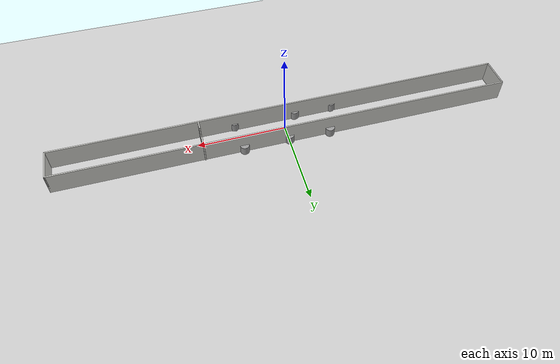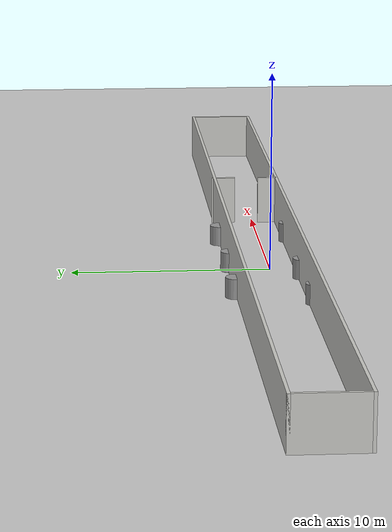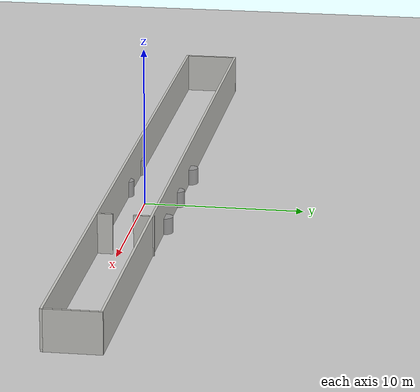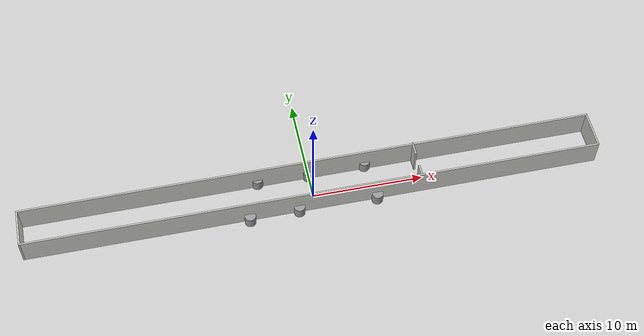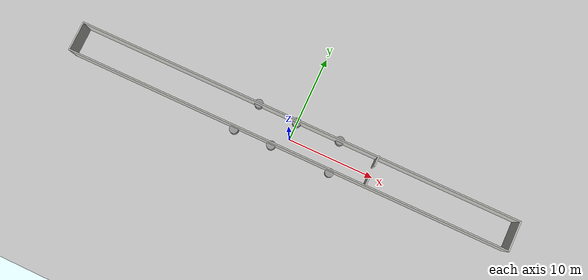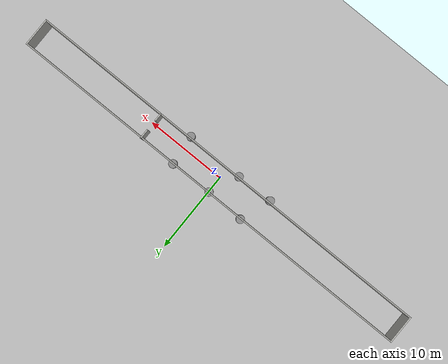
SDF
<sdf version="1.7">
 <world name="default">
  <light name="sun" type="directional">
   <pose>0 0 10 0 -0 0</pose>
   <diffuse>0.8 0.8 0.8 1</diffuse>
   <specular>0.2 0.2 0.2 1</specular>
   <attenuation>
    <range>1000</range>
    <constant>0.9</constant>
    <linear>0.01</linear>
    <quadratic>0.001</quadratic>
   </attenuation>
   <direction>-0.5 0.1 -0.9</direction>
   <spot><inner_angle>0</inner_angle><outer_angle>0</outer_angle><falloff>0</falloff></spot>
  </light>
  <model name="ground_plane">
   <static>1</static>
   <link name="link">
    <collision name="collision">
     <geometry><plane><normal>0 0 1</normal><size>100 100</size></plane></geometry>
     <surface><friction><ode><mu>100</mu><mu2>50</mu2></ode></friction></surface>
    </collision>
    <visual name="visual">
     <cast_shadows>0</cast_shadows>
     <geometry><plane><normal>0 0 1</normal><size>100 100</size></plane></geometry>
     <material>
      <script><uri>file://media/materials/scripts/gazebo.material</uri><name>Gazebo/Grey</name></script>
     </material>
    </visual>
   </link>
  </model>
  <gravity>0 0 -9.8</gravity>
  <magnetic_field>6e-06 2.3e-05 -4.2e-05</magnetic_field>
  <atmosphere type="adiabatic"/>
  <physics type="ode">
   <max_step_size>0.001</max_step_size>
   <real_time_factor>1</real_time_factor>
   <real_time_update_rate>1000</real_time_update_rate>
  </physics>
  <scene><ambient>0.4 0.4 0.4 1</ambient><background>0.7 0.7 0.7 1</background><shadows>1</shadows></scene>
  <audio><device>default</device></audio>
  <spherical_coordinates>
   <surface_model>EARTH_WGS84</surface_model>
   <latitude_deg>0</latitude_deg>
   <longitude_deg>0</longitude_deg>
   <elevation>0</elevation>
   <heading_deg>0</heading_deg>
  </spherical_coordinates>
  <model name="telematica">
   <pose>-0.003915 0.41687 0 0 -0 0</pose>
   <link name="Wall_12">
    <collision name="Wall_12_Collision">
     <geometry><box><size>51.75 0.15 2.5</size></box></geometry>
     <pose>0 0 1.25 0 -0 0</pose>
    </collision>
    <visual name="Wall_12_Visual">
     <pose>0 0 1.25 0 -0 0</pose>
     <geometry><box><size>51.75 0.15 2.5</size></box></geometry>
     <material>
      <script><uri>file://media/materials/scripts/gazebo.material</uri><name>Gazebo/CeilingTiled</name></script>
      <ambient>1 1 1 1</ambient>
     </material>
     <meta><layer>0</layer></meta>
    </visual>
    <pose>-0 1.6351 0 0 -0 0</pose>
   </link>
   <link name="Wall_13">
    <collision name="Wall_13_Collision">
     <geometry><box><size>3.5 0.15 2.5</size></box></geometry>
     <pose>0 0 1.25 0 -0 0</pose>
    </collision>
    <visual name="Wall_13_Visual">
     <pose>0 0 1.25 0 -0 0</pose>
     <geometry><box><size>3.5 0.15 2.5</size></box></geometry>
     <material>
      <script><uri>file://media/materials/scripts/gazebo.material</uri><name>Gazebo/CeilingTiled</name></script>
      <ambient>1 1 1 1</ambient>
     </material>
     <meta><layer>0</layer></meta>
    </visual>
    <pose>25.8 -0.0399 0 0 -0 -1.5708</pose>
   </link>
   <link name="Wall_14">
    <collision name="Wall_14_Collision">
     <geometry><box><size>51.75 0.15 2.5</size></box></geometry>
     <pose>0 0 1.25 0 -0 0</pose>
    </collision>
    <visual name="Wall_14_Visual">
     <pose>0 0 1.25 0 -0 0</pose>
     <geometry><box><size>51.75 0.15 2.5</size></box></geometry>
     <material>
      <script><uri>file://media/materials/scripts/gazebo.material</uri><name>Gazebo/CeilingTiled</name></script>
      <ambient>1 1 1 1</ambient>
     </material>
     <meta><layer>0</layer></meta>
    </visual>
    <pose>-0 -1.7149 0 0 -0 3.14159</pose>
   </link>
   <link name="Wall_15">
    <collision name="Wall_15_Collision">
     <geometry><box><size>3.5 0.15 2.5</size></box></geometry>
     <pose>0 0 1.25 0 -0 0</pose>
    </collision>
    <visual name="Wall_15_Visual">
     <pose>0 0 1.25 0 -0 0</pose>
     <geometry><box><size>3.5 0.15 2.5</size></box></geometry>
     <material>
      <script><uri>file://media/materials/scripts/gazebo.material</uri><name>Gazebo/CeilingTiled</name></script>
      <ambient>1 1 1 1</ambient>
     </material>
     <meta><layer>0</layer></meta>
    </visual>
    <pose>-25.8 -0.0399 0 0 -0 1.5708</pose>
   </link>
   <link name="Wall_17">
    <collision name="Wall_17_Collision">
     <geometry><box><size>1.25 0.15 2.5</size></box></geometry>
     <pose>0 0 1.25 0 -0 0</pose>
    </collision>
    <visual name="Wall_17_Visual">
     <pose>0 0 1.25 0 -0 0</pose>
     <geometry><box><size>1.25 0.15 2.5</size></box></geometry>
     <material>
      <script><uri>file://media/materials/scripts/gazebo.material</uri><name>Gazebo/CeilingTiled</name></script>
      <ambient>1 1 1 1</ambient>
     </material>
     <meta><layer>0</layer></meta>
    </visual>
    <pose>9.52506 1.1649 0 0 -0 -1.5708</pose>
   </link>
   <link name="Wall_19">
    <collision name="Wall_19_Collision">
     <geometry><box><size>1 0.15 2.5</size></box></geometry>
     <pose>0 0 1.25 0 -0 0</pose>
    </collision>
    <visual name="Wall_19_Visual">
     <pose>0 0 1.25 0 -0 0</pose>
     <geometry><box><size>1 0.15 2.5</size></box></geometry>
     <material>
      <script><uri>file://media/materials/scripts/gazebo.material</uri><name>Gazebo/CeilingTiled</name></script>
      <ambient>1 1 1 1</ambient>
     </material>
     <meta><layer>0</layer></meta>
    </visual>
    <pose>9.49846 -1.21172 0 0 -0 1.5708</pose>
   </link>
   <static>1</static>
  </model>
  <model name="unit_cylinder">
   <pose>-0.025204 2.01262 0.499994 -4e-06 -3e-06 -0</pose>
   <link name="link">
    <inertial>
     <mass>1</mass>
     <inertia><ixx>0.145833</ixx><ixy>0</ixy><ixz>0</ixz><iyy>0.145833</iyy><iyz>0</iyz><izz>0.125</izz></inertia>
    </inertial>
    <collision name="collision">
     <geometry><cylinder><radius>0.5</radius><length>1</length></cylinder></geometry>
    </collision>
    <visual name="visual">
     <geometry><cylinder><radius>0.5</radius><length>1</length></cylinder></geometry>
     <material>
      <script><name>Gazebo/Grey</name><uri>file://media/materials/scripts/gazebo.material</uri></script>
     </material>
    </visual>
   </link>
  </model>
  <model name="unit_cylinder_0">
   <pose>-1.54759 -1.45424 0.499992 -3e-06 3e-06 0</pose>
   <link name="link">
    <inertial>
     <mass>1</mass>
     <inertia><ixx>0.145833</ixx><ixy>0</ixy><ixz>0</ixz><iyy>0.145833</iyy><iyz>0</iyz><izz>0.125</izz></inertia>
    </inertial>
    <collision name="collision">
     <geometry><cylinder><radius>0.5</radius><length>1</length></cylinder></geometry>
    </collision>
    <visual name="visual">
     <geometry><cylinder><radius>0.5</radius><length>1</length></cylinder></geometry>
     <material>
      <script><name>Gazebo/Grey</name><uri>file://media/materials/scripts/gazebo.material</uri></script>
     </material>
    </visual>
   </link>
  </model>
  <model name="unit_cylinder_1">
   <pose>5.49289 -1.52973 0.499994 -4e-06 -3e-06 -0</pose>
   <link name="link">
    <inertial>
     <mass>1</mass>
     <inertia><ixx>0.145833</ixx><ixy>0</ixy><ixz>0</ixz><iyy>0.145833</iyy><iyz>0</iyz><izz>0.125</izz></inertia>
    </inertial>
    <collision name="collision">
     <geometry><cylinder><radius>0.5</radius><length>1</length></cylinder></geometry>
    </collision>
    <visual name="visual">
     <geometry><cylinder><radius>0.5</radius><length>1</length></cylinder></geometry>
     <material>
      <script><name>Gazebo/Grey</name><uri>file://media/materials/scripts/gazebo.material</uri></script>
     </material>
    </visual>
   </link>
  </model>
  <model name="unit_cylinder_2">
   <pose>-4.68098 2.15968 0.499992 -3e-06 3e-06 0</pose>
   <link name="link">
    <inertial>
     <mass>1</mass>
     <inertia><ixx>0.145833</ixx><ixy>0</ixy><ixz>0</ixz><iyy>0.145833</iyy><iyz>0</iyz><izz>0.125</izz></inertia>
    </inertial>
    <collision name="collision">
     <geometry><cylinder><radius>0.5</radius><length>1</length></cylinder></geometry>
    </collision>
    <visual name="visual">
     <geometry><cylinder><radius>0.5</radius><length>1</length></cylinder></geometry>
     <material>
      <script><name>Gazebo/Grey</name><uri>file://media/materials/scripts/gazebo.material</uri></script>
     </material>
    </visual>
   </link>
  </model>
  <model name="unit_cylinder_3">
   <pose>5.11988 2.12618 0.499994 -4e-06 -3e-06 0.039665</pose>
   <link name="link">
    <inertial>
     <mass>1</mass>
     <inertia><ixx>0.145833</ixx><ixy>0</ixy><ixz>0</ixz><iyy>0.145833</iyy><iyz>0</iyz><izz>0.125</izz></inertia>
    </inertial>
    <collision name="collision">
     <geometry><cylinder><radius>0.5</radius><length>1</length></cylinder></geometry>
    </collision>
    <visual name="visual">
     <geometry><cylinder><radius>0.5</radius><length>1</length></cylinder></geometry>
     <material>
      <script><name>Gazebo/Grey</name><uri>file://media/materials/scripts/gazebo.material</uri></script>
     </material>
    </visual>
   </link>
  </model>
  <model name="unit_cylinder_4">
   <pose>-5.98118 -1.55882 0.499992 -3e-06 3e-06 0</pose>
   <link name="link">
    <inertial>
     <mass>1</mass>
     <inertia><ixx>0.145833</ixx><ixy>0</ixy><ixz>0</ixz><iyy>0.145833</iyy><iyz>0</iyz><izz>0.125</izz></inertia>
    </inertial>
    <collision name="collision">
     <geometry><cylinder><radius>0.5</radius><length>1</length></cylinder></geometry>
    </collision>
    <visual name="visual">
     <geometry><cylinder><radius>0.5</radius><length>1</length></cylinder></geometry>
     <material>
      <script><name>Gazebo/Grey</name><uri>file://media/materials/scripts/gazebo.material</uri></script>
     </material>
    </visual>
   </link>
  </model>
 </world>
</sdf>
